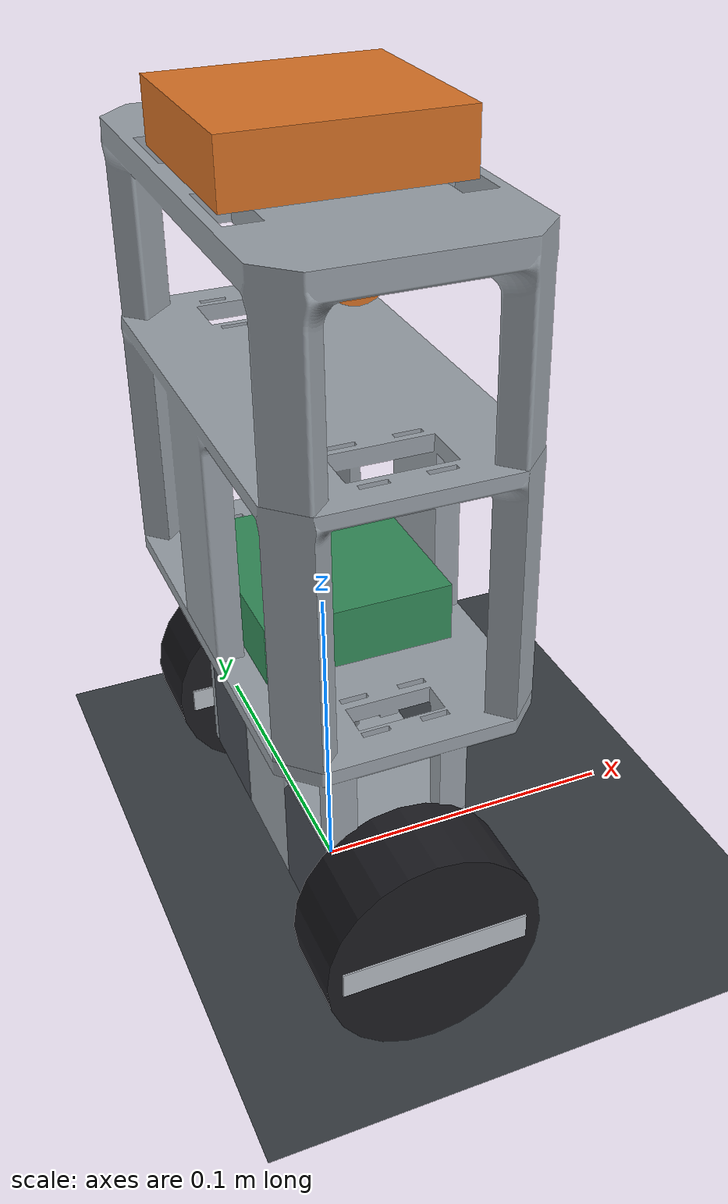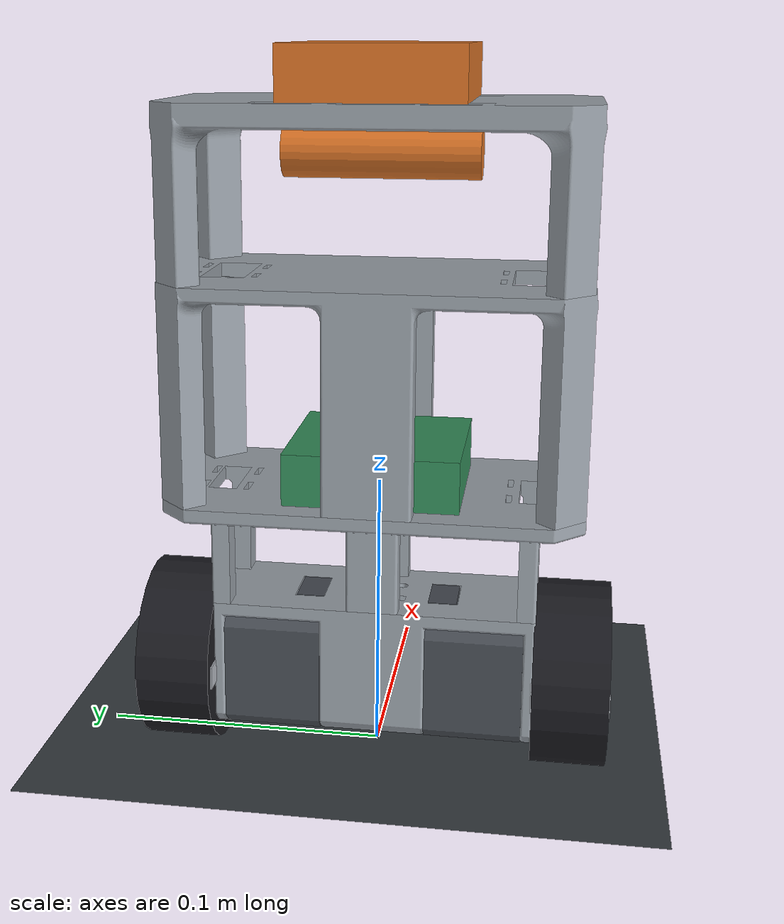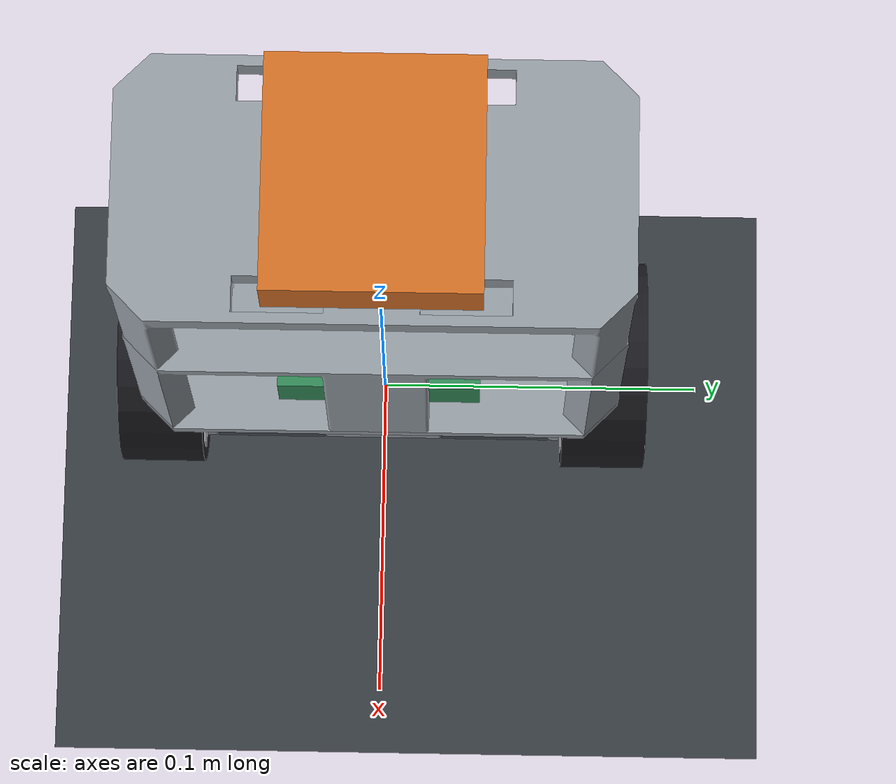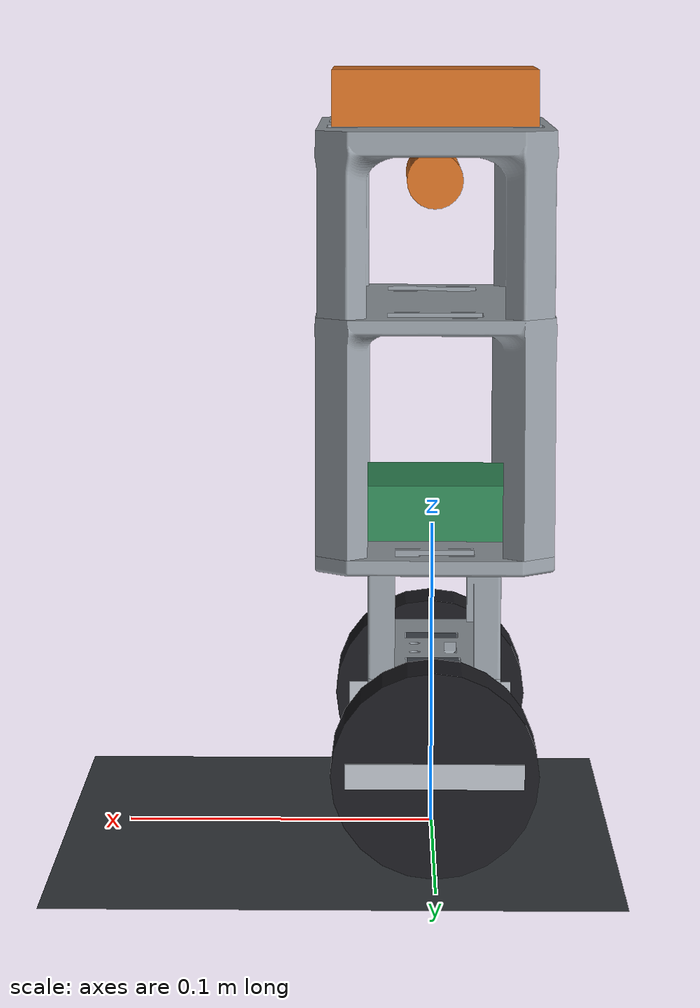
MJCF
<mujoco model="balancier">
  <compiler angle="degree" autolimits="true" meshdir="../../hardware/cao/stl_assemblage"/>
  <option timestep="0.0005" integrator="implicitfast" gravity="0 0 -9.81"/>

  <visual>
    <headlight diffuse="0.6 0.6 0.6" ambient="0.35 0.35 0.35" specular="0.1 0.1 0.1"/>
    <global azimuth="130" elevation="-16" offwidth="1920" offheight="1440"/>
    <quality shadowsize="4096"/>
  </visual>

  <asset>
    <mesh name="moteur_d" file="Assemblage1 - nema17HS3401S-1.STL" scale="0.001 0.001 0.001"/>
    <mesh name="moteur_g" file="Assemblage1 - nema17HS3401S-2.STL" scale="0.001 0.001 0.001"/>
    <mesh name="piece1" file="Assemblage1 - piece1-1.STL" scale="0.001 0.001 0.001"/>
    <mesh name="piece2" file="Assemblage1 - piece2-1.STL" scale="0.001 0.001 0.001"/>
    <mesh name="piece3" file="Assemblage1 - piece3-1.STL" scale="0.001 0.001 0.001"/>
    <mesh name="piece4" file="Assemblage1 - piece4-1.STL" scale="0.001 0.001 0.001"/>
    <texture type="skybox" builtin="gradient" rgb1="0.26 0.31 0.36" rgb2="0.06 0.08 0.11"
             width="512" height="512"/>
    <texture name="damier" type="2d" builtin="checker" rgb1="0.19 0.21 0.23"
             rgb2="0.25 0.27 0.29" width="300" height="300"/>
    <material name="sol" texture="damier" texrepeat="14 14" reflectance="0.1"/>
  </asset>

  <default>
    <geom friction="1.0 0.005 0.0001"/>
    <default class="roue">
      <geom type="cylinder" size="0.0325 0.013" zaxis="0 1 0"
            mass="0.03" rgba="0.11 0.11 0.13 1"/>
      <!-- armature = inertie du rotor pas-a-pas ramenee a l axe (34 g.cm2),
           du meme ordre que celle de la roue. L oublier fausse la dynamique. -->
      <joint type="hinge" axis="0 1 0" armature="1.2e-5" damping="2e-5"/>
    </default>
  </default>

  <worldbody>
    <light pos="0.6 -0.6 1.8" dir="-0.3 0.3 -1" directional="true" diffuse="0.55 0.55 0.55"/>
    <geom name="sol" type="plane" size="5 5 0.1" material="sol"/>

    <body name="chassis" pos="0 0 0.0325">
      <freejoint name="libre"/>

      <geom name="moteur_d" type="mesh" mesh="moteur_d" pos="-0.03968 0.07410 -1.02100" euler="0 0 -90"
            mass="0.2200" rgba="0.28 0.30 0.33 1"/>
      <geom name="moteur_g" type="mesh" mesh="moteur_g" pos="-0.03968 0.07410 -1.02100" euler="0 0 -90"
            mass="0.2200" rgba="0.28 0.30 0.33 1"/>
      <geom name="piece1" type="mesh" mesh="piece1" pos="-0.03968 0.07410 -1.02100" euler="0 0 -90"
            mass="0.0410" rgba="0.60 0.63 0.66 1"/>
      <geom name="piece2" type="mesh" mesh="piece2" pos="-0.03968 0.07410 -1.02100" euler="0 0 -90"
            mass="0.0410" rgba="0.60 0.63 0.66 1"/>
      <geom name="piece3" type="mesh" mesh="piece3" pos="-0.03968 0.07410 -1.02100" euler="0 0 -90"
            mass="0.0670" rgba="0.60 0.63 0.66 1"/>
      <geom name="piece4" type="mesh" mesh="piece4" pos="-0.03968 0.07410 -1.02100" euler="0 0 -90"
            mass="0.0520" rgba="0.60 0.63 0.66 1"/>

      <geom name="bat_haut" type="box" size="0.033 0.030 0.009" pos="0 0 0.208"
            mass="0.163" contype="0" conaffinity="0" rgba="0.85 0.45 0.15 1"/>
      <geom name="bat_bas" type="cylinder" size="0.009 0.033" zaxis="0 1 0"
            pos="0 0 0.182"
            mass="0.054" contype="0" conaffinity="0" rgba="0.85 0.45 0.15 1"/>
      <geom name="elec" type="box" size="0.028 0.030 0.009" pos="0 0 0.075"
            mass="0.07" contype="0" conaffinity="0" rgba="0.20 0.55 0.35 1"/>

      <!-- Le MPU-6050 : x devant, z en haut. Sur le vrai robot il est couche,
           d ou angleOffset = -91,4 deg ; ici la verticale vaut 0. -->
      <site name="mpu" pos="0 0 0.06" size="0.005" rgba="0 0.85 0.85 1"/>

      <body name="corps_roue_d" pos="0  0.0691 0">
        <joint name="roue_d" class="roue"/>
        <geom  name="roue_d" class="roue"/>
        <geom name="rayon_d" type="box" size="0.0279 0.0135 0.004" pos="0 0 0"
              mass="0" rgba="0.72 0.74 0.77 1" contype="0" conaffinity="0"/>
      </body>
      <body name="corps_roue_g" pos="0 -0.0691 0">
        <joint name="roue_g" class="roue"/>
        <geom  name="roue_g" class="roue"/>
        <geom name="rayon_g" type="box" size="0.0279 0.0135 0.004" pos="0 0 0"
              mass="0" rgba="0.72 0.74 0.77 1" contype="0" conaffinity="0"/>
      </body>
    </body>
  </worldbody>

  <!-- Freins desactives. Les activer a chaud (data.eq_active) bloque les roues :
       distingue "pendule sur son essieu" de "robot qui bascule en bloc". -->
  <equality>
    <joint name="frein_d" joint1="roue_d" active="false"/>
    <joint name="frein_g" joint1="roue_g" active="false"/>
  </equality>

  <actuator>
    <velocity name="roue_d" joint="roue_d" kv="0.5"
              ctrlrange="-11.78 11.78" forcerange="-0.2 0.2"/>
    <velocity name="roue_g" joint="roue_g" kv="0.5"
              ctrlrange="-11.78 11.78" forcerange="-0.2 0.2"/>
  </actuator>

  <sensor>
    <gyro          name="gyro"  site="mpu"/>
    <accelerometer name="accel" site="mpu"/>
    <jointpos      name="pos_roue_d" joint="roue_d"/>
    <jointpos      name="pos_roue_g" joint="roue_g"/>
    <framequat name="orientation" objtype="body" objname="chassis"/>
    <framepos  name="position"    objtype="body" objname="chassis"/>
  </sensor>
</mujoco>
